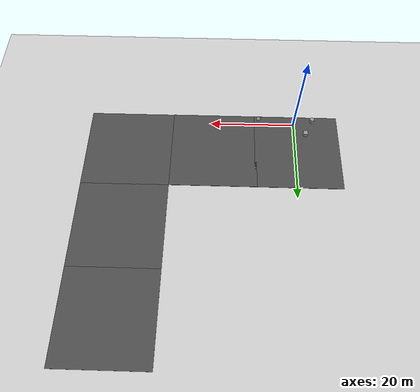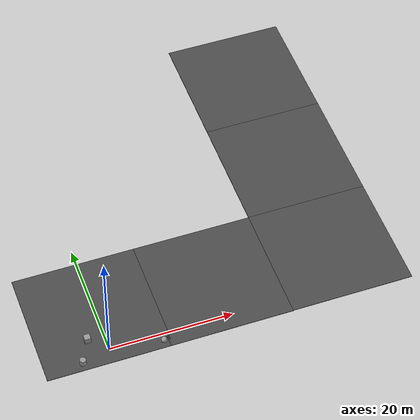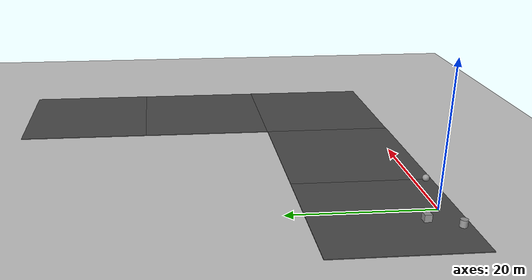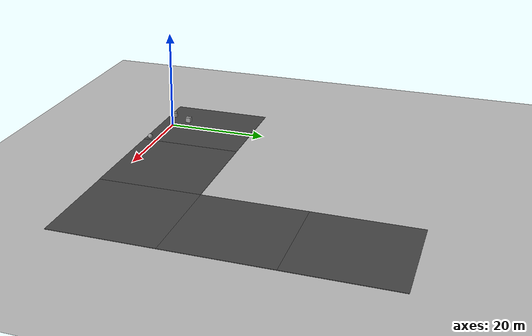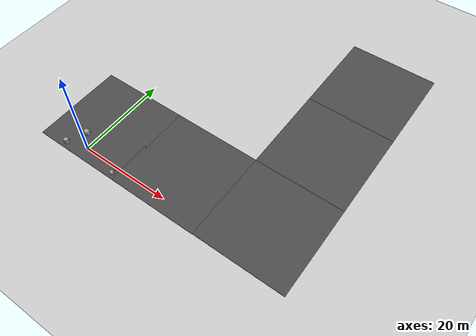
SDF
<sdf version="1.7">
 <world name="world">
  <model name="ground_plane">
   <static>1</static>
   <link name="link">
    <collision name="collision">
     <geometry><plane><normal>0 0 1</normal><size>100 100</size></plane></geometry>
     <surface><friction><ode><mu>100</mu><mu2>50</mu2></ode></friction></surface>
    </collision>
    <visual name="visual">
     <cast_shadows>0</cast_shadows>
     <geometry><plane><normal>0 0 1</normal><size>100 100</size></plane></geometry>
     <material>
      <script><uri>file://media/materials/scripts/gazebo.material</uri><name>Gazebo/Grey</name></script>
     </material>
    </visual>
    <velocity_decay><linear>0</linear><angular>0</angular></velocity_decay>
   </link>
  </model>
  <light name="sun" type="directional">
   <pose>0 0 10 0 -0 0</pose>
   <diffuse>0.8 0.8 0.8 1</diffuse>
   <specular>0.2 0.2 0.2 1</specular>
   <attenuation>
    <range>1000</range>
    <constant>0.9</constant>
    <linear>0.01</linear>
    <quadratic>0.001</quadratic>
   </attenuation>
   <direction>-0.5 0.1 -0.9</direction>
   <spot><inner_angle>0</inner_angle><outer_angle>0</outer_angle><falloff>0</falloff></spot>
  </light>
  <physics type="ode">
   <max_step_size>0.001</max_step_size>
   <real_time_factor>1</real_time_factor>
   <real_time_update_rate>1000</real_time_update_rate>
  </physics>
  <scene><ambient>0.4 0.4 0.4 1</ambient><background>0.7 0.7 0.7 1</background><shadows>1</shadows></scene>
  <spherical_coordinates>
   <surface_model>EARTH_WGS84</surface_model>
   <latitude_deg>0</latitude_deg>
   <longitude_deg>0</longitude_deg>
   <elevation>0</elevation>
   <heading_deg>0</heading_deg>
  </spherical_coordinates>
  <model name="asphalt_plane_3">
   <static>1</static>
   <link name="link">
    <collision name="collision"><geometry><box><size>20 20 0.1</size></box></geometry></collision>
    <visual name="visual">
     <cast_shadows>0</cast_shadows>
     <geometry><box><size>20 20 0.1</size></box></geometry>
     <material>
      <script>
       <uri>model://asphalt_plane/materials/scripts</uri>
       <uri>model://asphalt_plane/materials/textures</uri>
       <name>vrc/asphalt</name>
      </script>
     </material>
    </visual>
    <velocity_decay><linear>0</linear><angular>0</angular></velocity_decay>
   </link>
   <pose>-0.579832 7.43849 0 0 -0 0</pose>
  </model>
  <model name="asphalt_plane_4">
   <static>1</static>
   <link name="link">
    <collision name="collision"><geometry><box><size>20 20 0.1</size></box></geometry></collision>
    <visual name="visual">
     <cast_shadows>0</cast_shadows>
     <geometry><box><size>20 20 0.1</size></box></geometry>
     <material>
      <script>
       <uri>model://asphalt_plane/materials/scripts</uri>
       <uri>model://asphalt_plane/materials/textures</uri>
       <name>vrc/asphalt</name>
      </script>
     </material>
    </visual>
    <velocity_decay><linear>0</linear><angular>0</angular></velocity_decay>
   </link>
   <pose>19 7.43486 0 0 -0 0</pose>
  </model>
  <model name="asphalt_plane_6">
   <static>1</static>
   <link name="link">
    <collision name="collision"><geometry><box><size>20 20 0.1</size></box></geometry></collision>
    <visual name="visual">
     <cast_shadows>0</cast_shadows>
     <geometry><box><size>20 20 0.1</size></box></geometry>
     <material>
      <script>
       <uri>model://asphalt_plane/materials/scripts</uri>
       <uri>model://asphalt_plane/materials/textures</uri>
       <name>vrc/asphalt</name>
      </script>
     </material>
    </visual>
    <velocity_decay><linear>0</linear><angular>0</angular></velocity_decay>
   </link>
   <pose>39 7.49528 0 0 -0 0</pose>
  </model>
  <model name="asphalt_plane_7">
   <static>1</static>
   <link name="link">
    <collision name="collision"><geometry><box><size>20 20 0.1</size></box></geometry></collision>
    <visual name="visual">
     <cast_shadows>0</cast_shadows>
     <geometry><box><size>20 20 0.1</size></box></geometry>
     <material>
      <script>
       <uri>model://asphalt_plane/materials/scripts</uri>
       <uri>model://asphalt_plane/materials/textures</uri>
       <name>vrc/asphalt</name>
      </script>
     </material>
    </visual>
    <velocity_decay><linear>0</linear><angular>0</angular></velocity_decay>
   </link>
   <pose>39 27.4494 0 0 -0 0</pose>
  </model>
  <model name="asphalt_plane_9">
   <static>1</static>
   <link name="link">
    <collision name="collision"><geometry><box><size>20 20 0.1</size></box></geometry></collision>
    <visual name="visual">
     <cast_shadows>0</cast_shadows>
     <geometry><box><size>20 20 0.1</size></box></geometry>
     <material>
      <script>
       <uri>model://asphalt_plane/materials/scripts</uri>
       <uri>model://asphalt_plane/materials/textures</uri>
       <name>vrc/asphalt</name>
      </script>
     </material>
    </visual>
    <velocity_decay><linear>0</linear><angular>0</angular></velocity_decay>
   </link>
   <pose>39 47.4433 0 0 -0 0</pose>
  </model>
  <gravity>0 0 -9.8</gravity>
  <magnetic_field>6e-06 2.3e-05 -4.2e-05</magnetic_field>
  <atmosphere type="adiabatic"/>
  <model name="unit_sphere">
   <pose>8.32219 -1.4855 0.55 0 -0 0</pose>
   <link name="link">
    <inertial>
     <mass>1</mass>
     <inertia><ixx>0.1</ixx><ixy>0</ixy><ixz>0</ixz><iyy>0.1</iyy><iyz>0</iyz><izz>0.1</izz></inertia>
    </inertial>
    <collision name="collision"><geometry><sphere><radius>0.5</radius></sphere></geometry></collision>
    <visual name="visual">
     <geometry><sphere><radius>0.5</radius></sphere></geometry>
     <material>
      <script><name>Gazebo/Grey</name><uri>file://media/materials/scripts/gazebo.material</uri></script>
     </material>
    </visual>
   </link>
  </model>
  <model name="unit_box">
   <pose>-2.75067 2.59325 0.55 -0 -0 -0</pose>
   <link name="link">
    <inertial>
     <mass>1</mass>
     <inertia>
      <ixx>0.166667</ixx>
      <ixy>0</ixy>
      <ixz>0</ixz>
      <iyy>0.166667</iyy>
      <iyz>0</iyz>
      <izz>0.166667</izz>
     </inertia>
    </inertial>
    <collision name="collision"><geometry><box><size>1 1 1</size></box></geometry></collision>
    <visual name="visual">
     <geometry><box><size>1 1 1</size></box></geometry>
     <material>
      <script><name>Gazebo/Grey</name><uri>file://media/materials/scripts/gazebo.material</uri></script>
     </material>
    </visual>
   </link>
  </model>
  <model name="unit_cylinder">
   <pose>-4.59367 -1.32466 0.549992 3e-06 -0 -1.5e-05</pose>
   <link name="link">
    <inertial>
     <mass>1</mass>
     <inertia><ixx>0.145833</ixx><ixy>0</ixy><ixz>0</ixz><iyy>0.145833</iyy><iyz>0</iyz><izz>0.125</izz></inertia>
    </inertial>
    <collision name="collision">
     <geometry><cylinder><radius>0.5</radius><length>1</length></cylinder></geometry>
    </collision>
    <visual name="visual">
     <geometry><cylinder><radius>0.5</radius><length>1</length></cylinder></geometry>
     <material>
      <script><name>Gazebo/Grey</name><uri>file://media/materials/scripts/gazebo.material</uri></script>
     </material>
    </visual>
   </link>
  </model>
 </world>
</sdf>
